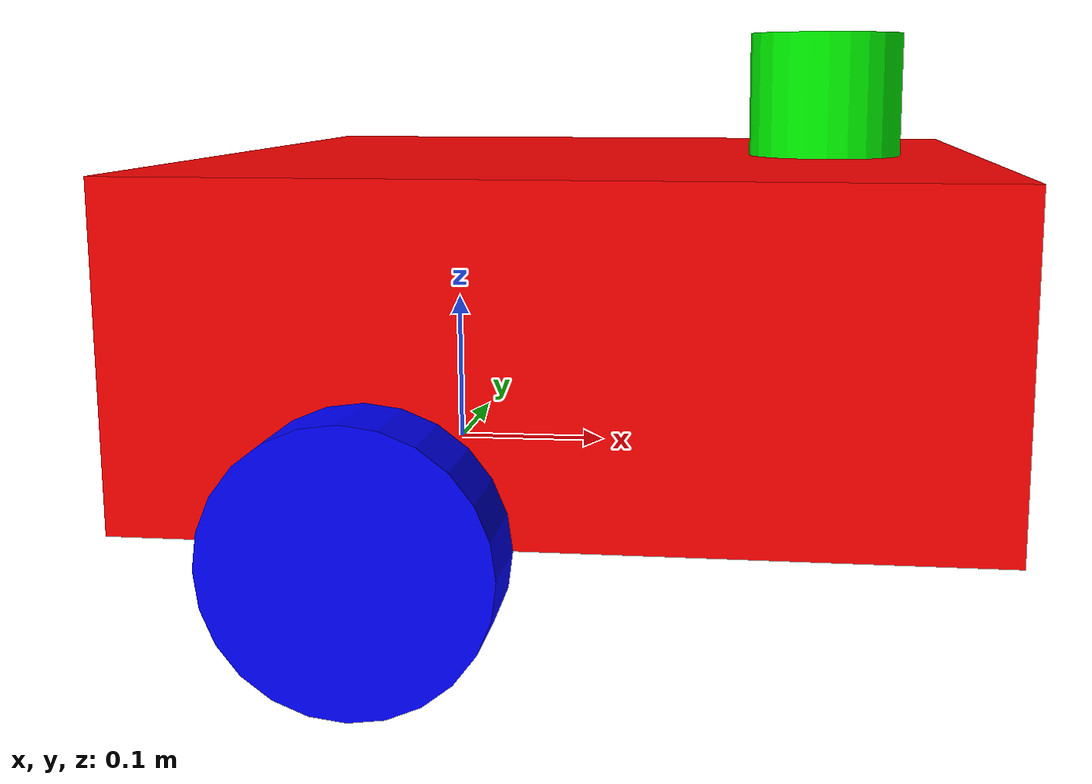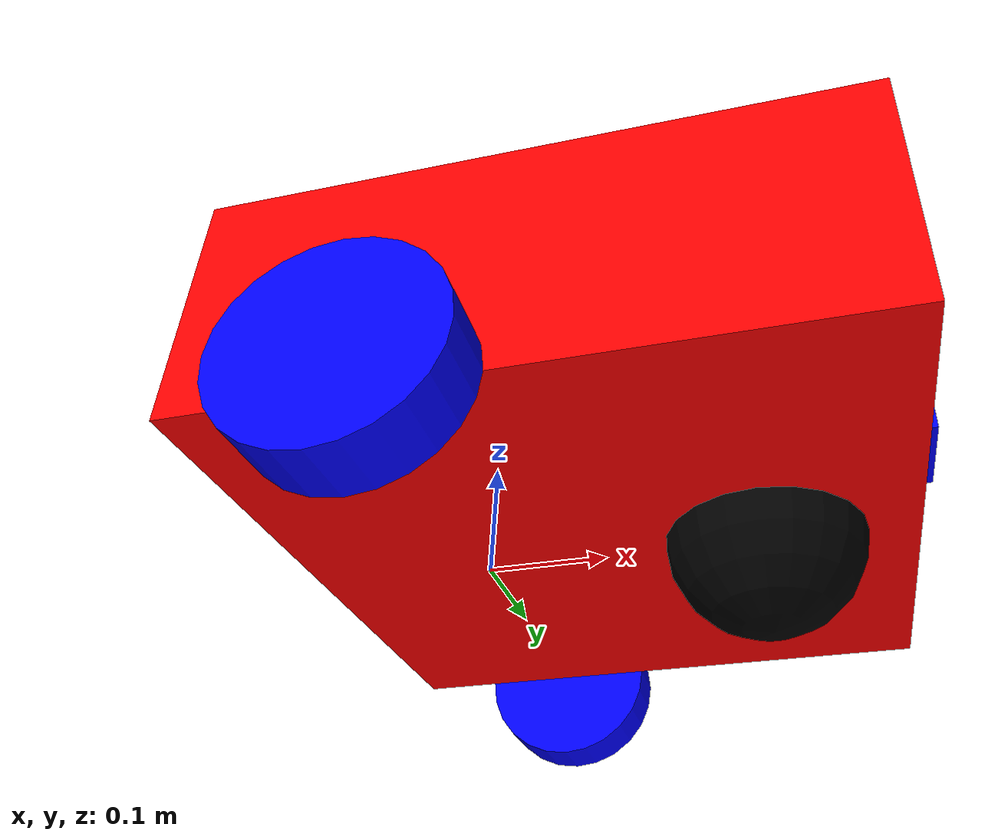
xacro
<?xml version="1.0"?>
<robot xmlns:xacro="https://www.ros.org/wiki/xacro" name="mobot">

    <xacro:include filename="robot_core.xacro" />
    <xacro:include filename="gazebo_control.xacro" />
    <xacro:include filename="lidar.xacro" />
    <xacro:include filename="depth_camera.xacro" />

</robot>

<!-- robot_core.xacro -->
<robot xmlns:xacro="https://www.ros.org/wiki/xacro">

    <material name="red">
        <color rgba="1 0 0 1"/>
    </material>

    <material name="blue">
        <color rgba="0 0 1 1"/>
    </material>

    <material name="orange">
        <color rgba="1 0.3686 0.0196 1"/>
    </material>

    <material name="black">
        <color rgba="0 0 0 1"/>
    </material>

    <material name="green">
        <color rgba="0 1 0 1"/>
    </material>

    <!-- BASE LINK -->

    <link name="base_link"/>

    <!-- CHASSIS -->

    <link name="chassis">
        <visual>
            <origin xyz="0.25 0 0.1" rpy="0 0 0"/>
            <geometry>
                <box size="0.5 0.5 0.2"/>
            </geometry>
            <material name="red"/>
        </visual>

        <collision>
            <origin xyz="0.25 0 0.1" rpy="0 0 0"/>
            <geometry>
                <box size="0.5 0.5 0.2"/>
            </geometry>
        </collision>

        <inertial>
            <origin xyz="0.25 0 0.1" rpy="0 0 0"/>
            <mass value="5.0"/>
            <inertia
                ixx="0.1208"
                iyy="0.1208"
                izz="0.2083"
                ixy="0.0"
                ixz="0.0"
                iyz="0.0"/>
        </inertial>

    </link>

    <gazebo reference="chassis">
        <material>Gazebo/Red</material>
    </gazebo>

    <joint name="base_joint" type="fixed">
        <parent link="base_link"/>
        <child link="chassis"/>
        <origin xyz= "-0.15 0 0" rpy="0 0 0"/>
    </joint>

    <!-- LEFT WHEEL -->

    <joint name="left_wheel_joint" type="continuous">
        <parent link="base_link"/>
        <child link="left_wheel"/>
        <origin xyz="0 0.275 0" rpy="-1.5708 0 0"/>
        <axis xyz="0 0 1"/>
    </joint>

    <link name="left_wheel">
        <visual>
            <origin xyz="0 0 0" rpy="0 0 0"/>
            <geometry>
                <cylinder radius="0.08" length="0.05"/>
            </geometry>
            <material name="blue"/>
        </visual>

        <collision>
            <origin xyz="0 0 0" rpy="0 0 0"/>
            <geometry>
                <cylinder radius="0.08" length="0.05"/>
            </geometry>

        </collision>

        <inertial>
            <origin xyz="0 0 0" rpy="0 0 0"/>
            <mass value="2.0"/>
            <inertia
                ixx="0.0010"
                iyy="0.0010"
                izz="0.0016"
                ixy="0.0"
                ixz="0.0"
                iyz="0.0"/>
        </inertial>

    </link>

    <gazebo reference="left_wheel">
        <material>Gazebo/Blue</material>
    </gazebo>

    <!-- RIGHT WHEEL -->

    <joint name="right_wheel_joint" type="continuous">
        <parent link="base_link"/>
        <child link="right_wheel"/>
        <origin xyz="0 -0.275 0" rpy="-1.5708 0 0"/>
        <axis xyz="0 0 1"/>
    </joint>

    <link name="right_wheel">
        <visual>
            <origin xyz="0 0 0" rpy="0 0 0"/>
            <geometry>
                <cylinder radius="0.08" length="0.05"/>
            </geometry>
            <material name="blue"/>
        </visual>
        <collision>
            <origin xyz="0 0 0" rpy="0 0 0"/>
            <geometry>
                <cylinder radius="0.08" length="0.05"/>
            </geometry>

        </collision>

        <inertial>
            <origin xyz="0 0 0" rpy="0 0 0"/>
            <mass value="2.0"/>
            <inertia
                ixx="0.0010"
                iyy="0.0010"
                izz="0.0016"
                ixy="0.0"
                ixz="0.0"
                iyz="0.0"/>
        </inertial>

    </link>

    <gazebo reference="right_wheel">
        <material>Gazebo/Blue</material>
    </gazebo>

    <!-- CASTER WHEEL -->

    <joint name="caster_wheel_joint" type="fixed">
        <parent link="chassis"/>
        <child link="caster_wheel"/>
        <origin xyz="0.38 0 0" rpy="0 0 0"/>
    </joint>

    <link name= "caster_wheel">
        <visual>
            <origin xyz="0 0 0" rpy="0 0 0"/>
            <geometry>
                <sphere radius="0.08"/>
            </geometry>
            <material name="black"/>
        </visual>
        <collision>
            <origin xyz="0 0 0" rpy="0 0 0"/>
            <geometry>
                <sphere radius="0.08"/>
            </geometry>

        </collision>

        <inertial>
            <origin xyz="0 0 0" rpy="0 0 0"/>
            <mass value="0.1"/>
            <inertia
                ixx="0.00026"
                iyy="0.00026"
                izz="0.00026"
                ixy="0.0"
                ixz="0.0"
                iyz="0.0"/>
        </inertial>

    </link>

    <gazebo reference="caster_wheel">
        <material>Gazebo/Black</material>
        <mu1 value="0.1"/>
        <mu2 value="0.1"/>
    </gazebo>
</robot>

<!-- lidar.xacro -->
<robot xmlns:xacro="https://www.ros.org/wiki/xacro">

<joint name="lidar_joint" type="fixed">
        <parent link="chassis"/>
        <child link="lidar_link"/>
        <origin xyz="0.4 0 0.24" rpy="0 0 0"/>
    </joint>

    <link name= "lidar_link">
        <visual>
            <origin xyz="0 0 0" rpy="0 0 0"/>
            <geometry>
                <cylinder radius="0.05" length="0.08"/>
            </geometry>
            <material name="green"/>
        </visual>
        <collision>
            <origin xyz="0 0 0" rpy="0 0 0"/>
            <geometry>
                <cylinder radius="0.05" length="0.08"/>
            </geometry>

        </collision>

        <inertial>
            <origin xyz="0 0 0" rpy="0 0 0"/>
            <mass value="0.1"/>
            <inertia ixx="0.0001" ixy="0" ixz="0"
                    iyy="0.0001" iyz="0" izz="0.0001"/>
        </inertial>

    </link>

<gazebo reference="lidar_link">
        <sensor name="lidar" type="ray">
            <pose>0 0 0 0 0 0</pose>
            <always_on>true</always_on>
            <visualize>true</visualize>
            <update_rate>10</update_rate>

            <ray>
                <scan>
                    <horizontal>
                        <samples>360</samples>
                        <resolution>1</resolution>
                        <min_angle>-3.14159</min_angle>
                        <max_angle>3.14159</max_angle>
                    </horizontal>
                </scan>
                <range>
                    <min>0.3</min>
                    <max>12.0</max>
                    <resolution>0.01</resolution>
                </range>
            </ray>

            <plugin name="lidar_plugin" filename="libgazebo_ros_ray_sensor.so">
                <ros>
                    <remapping>~/out:=scan</remapping>
                </ros>

                <output_type>sensor_msgs/LaserScan</output_type>
                <frame_name>lidar_link</frame_name>
            </plugin>

        </sensor>
    </gazebo>

</robot>

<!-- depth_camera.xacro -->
<robot xmlns:xacro="https://www.ros.org/wiki/xacro">

    <joint name="camera_joint" type="fixed">
        <parent link="chassis"/>
        <child link="camera_link"/>
        <origin xyz="0.51 0 0.1" rpy="0 0 0"/>
    </joint>

    <link name= "camera_link">
        <visual>
            <origin xyz="0 0 0" rpy="0 0 0"/>
            <geometry>
                <box size="0.02 0.08 0.08"/>
            </geometry>
            <material name="blue"/>
        </visual>
        <collision>
            <origin xyz="0 0 0" rpy="0 0 0"/>
            <geometry>
                <cylinder radius="0.05" length="0.08"/>
            </geometry>

        </collision>

        <inertial>
            <origin xyz="0 0 0" rpy="0 0 0"/>
            <mass value="0.1"/>
            <inertia ixx="0.0001" ixy="0" ixz="0"
                    iyy="0.0001" iyz="0" izz="0.0001"/>
        </inertial>

    </link>

    <joint name="camera_optical_joint" type="fixed">
        <parent link="camera_link"/>
        <child link="camera_optical_link"/>
        <origin xyz="0 0 0" rpy="${-pi/2} 0 ${-pi/2}"/>
    </joint>

    <link name="camera_optical_link"/>

    <gazebo reference="camera_link">
        <sensor name="camera" type="depth">
            <pose>0 0 0 0 0 0</pose>
            <always_on>true</always_on>
            <visualize>true</visualize>
            <update_rate>10</update_rate>

            <camera>

                <horizontal_fov>1.089</horizontal_fov>
                <image>
                    <format>B8G8R8</format>
                    <width>640</width>
                    <height>480</height>
                </image>

                <clip>
                    <near>0.05</near>
                    <far>8.0</far>
                </clip>

            </camera>

            <plugin name="camera_plugin" filename="libgazebo_ros_camera.so">

                <frame_name>camera_optical_link</frame_name>
                <max_depth>100.0</max_depth>
                <min_depth>0.1</min_depth>
            </plugin>

        </sensor>
    </gazebo>

</robot>
